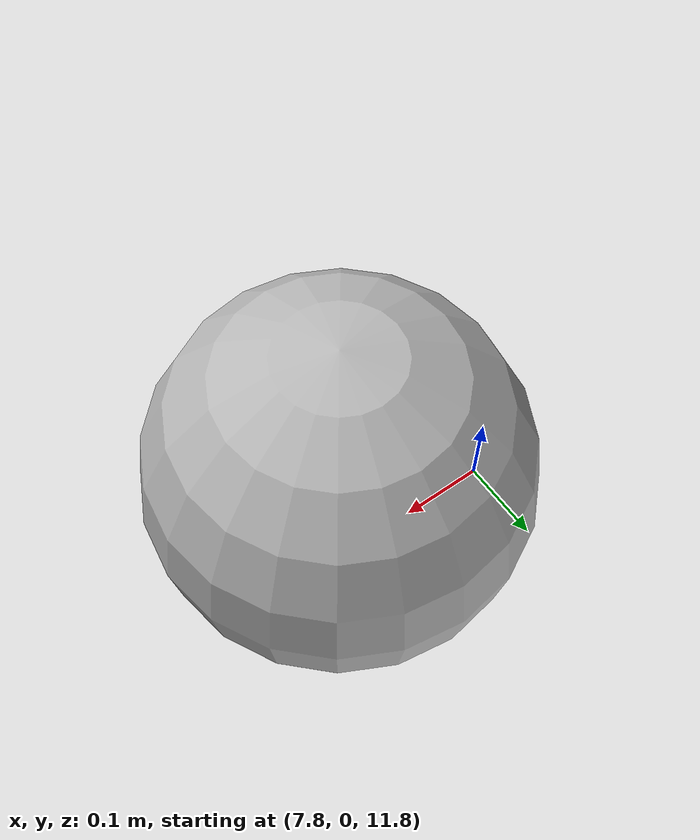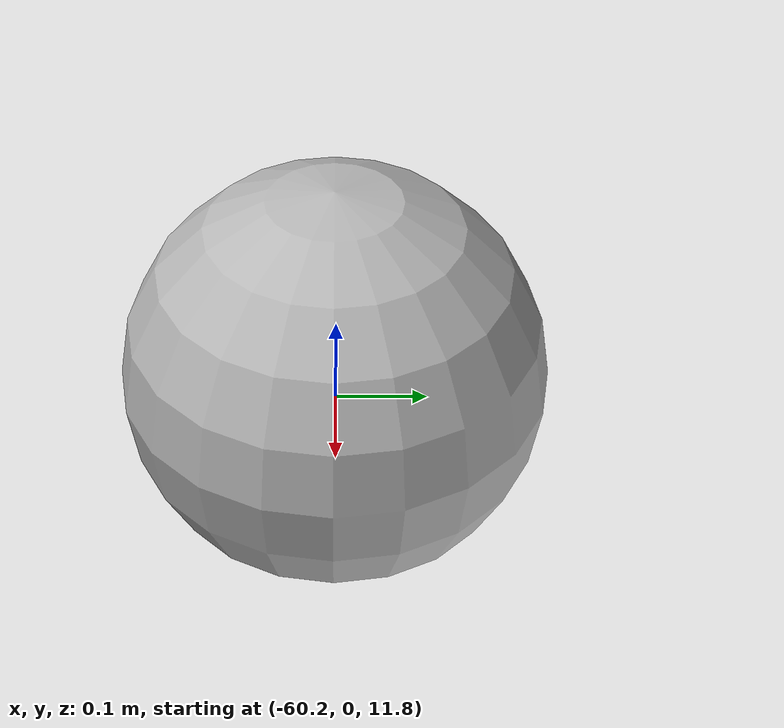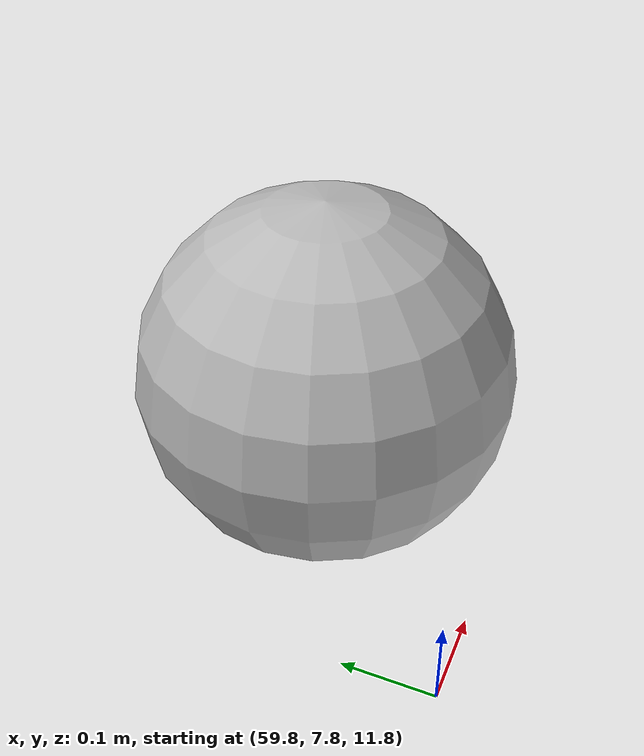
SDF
<sdf version="1.7">
 <world name="probe3">
  <plugin filename="ignition-gazebo-physics-system" name="ignition::gazebo::systems::Physics"/>
  <plugin filename="ignition-gazebo-scene-broadcaster-system" name="ignition::gazebo::systems::SceneBroadcaster"/>
  <gravity>0 0 -9.8</gravity>
  <model name="u100">
   <static>false</static>
   <pose>-60 0 12 0 0 0</pose>
   <link name="link">
    <collision name="collision"><geometry><sphere><radius>0.2</radius></sphere></geometry></collision>
    <visual name="visual"><geometry><sphere><radius>0.2</radius></sphere></geometry></visual>
   </link>
  </model>
  <model name="two_lo">
   <static>false</static>
   <pose>-8 0 12 0 0 0</pose>
   <link name="link">
    <collision name="collision"><geometry><sphere><radius>0.2</radius></sphere></geometry></collision>
    <visual name="visual"><geometry><sphere><radius>0.2</radius></sphere></geometry></visual>
   </link>
  </model>
  <model name="two_hi">
   <static>false</static>
   <pose>8 0 12 0 0 0</pose>
   <link name="link">
    <collision name="collision"><geometry><sphere><radius>0.2</radius></sphere></geometry></collision>
    <visual name="visual"><geometry><sphere><radius>0.2</radius></sphere></geometry></visual>
   </link>
  </model>
  <model name="b_top">
   <static>false</static>
   <pose>60 8 12 0 0 0</pose>
   <link name="link">
    <collision name="collision"><geometry><sphere><radius>0.2</radius></sphere></geometry></collision>
    <visual name="visual"><geometry><sphere><radius>0.2</radius></sphere></geometry></visual>
   </link>
  </model>
  <model name="b_bot">
   <static>false</static>
   <pose>60 -8 12 0 0 0</pose>
   <link name="link">
    <collision name="collision"><geometry><sphere><radius>0.2</radius></sphere></geometry></collision>
    <visual name="visual"><geometry><sphere><radius>0.2</radius></sphere></geometry></visual>
   </link>
  </model>
 </world>
</sdf>
